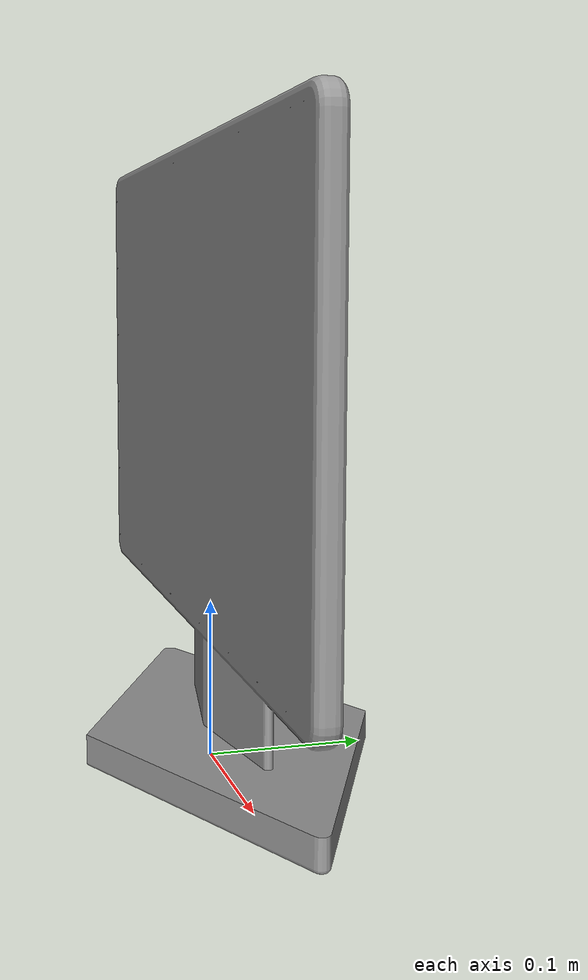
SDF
<?xml version='1.0'?>
<sdf version='1.6'>
  <model name='rai_pc'>
    <link name='link_4'>
      <pose frame=''>0 0 0 0 -0 0</pose>
      <visual name='visual'>
        <pose frame=''>0 0 0.235 1.57 -0 0</pose>
        <geometry>
          <mesh>
             <uri>model://rai_monitor_pc/meshes/rai_monitor_pc.STL</uri>
            <scale>1 1 1</scale>
          </mesh>
        </geometry>
        <material>
          <lighting>1</lighting>
          <script>
            <uri>file://media/materials/scripts/gazebo.material</uri>
            <name>Gazebo/Grey</name>
          </script>
          <ambient>0.1 0.1 0.1 0.1</ambient>
          <diffuse>0.3 0.3 0.3 0.5</diffuse>
          <specular>0.01 0.01 0.01 1</specular>
          <emissive>0 0 0 0.5</emissive>
          <shader type='vertex'>
            <normal_map>__default__</normal_map>
          </shader>
        </material>
        <cast_shadows>1</cast_shadows>
        <transparency>0</transparency>
      </visual>
      <collision name='collision'>
        <pose frame=''>0 0.005 0.19 0 -0 0</pose>
        <geometry>
          <box>
            <size>0.499 0.05 0.38</size>
          </box>
        </geometry>
      </collision>
    </link>
    <static>1</static>
    <allow_auto_disable>1</allow_auto_disable>
  </model>
</sdf>
